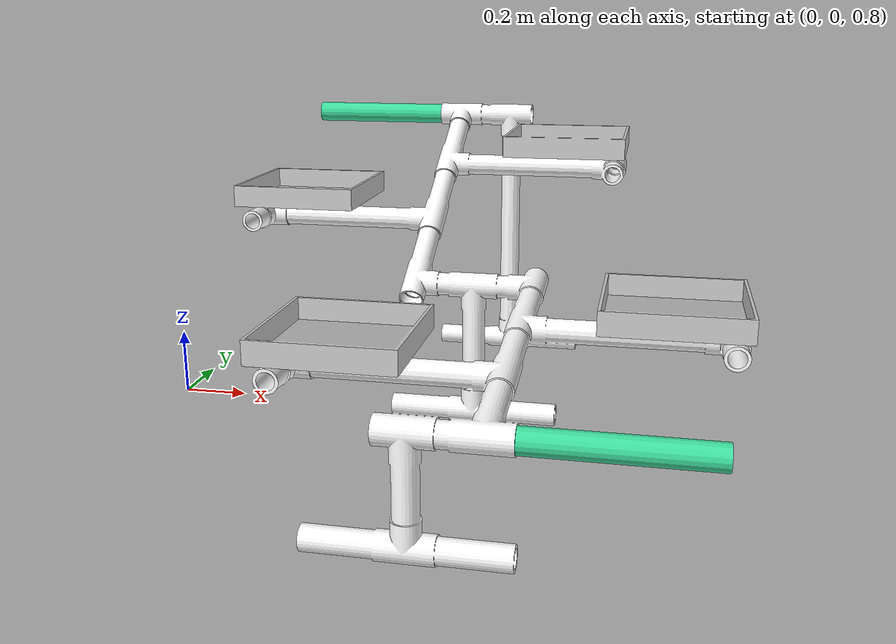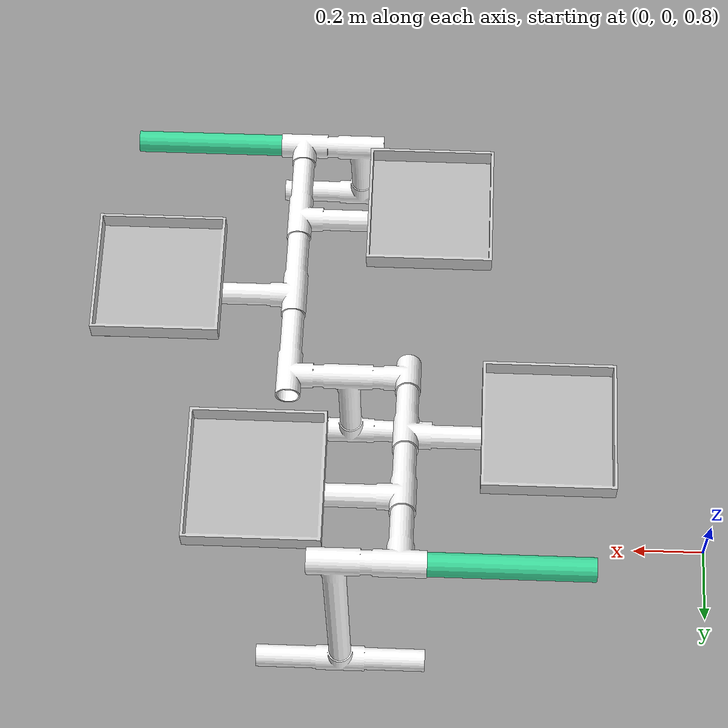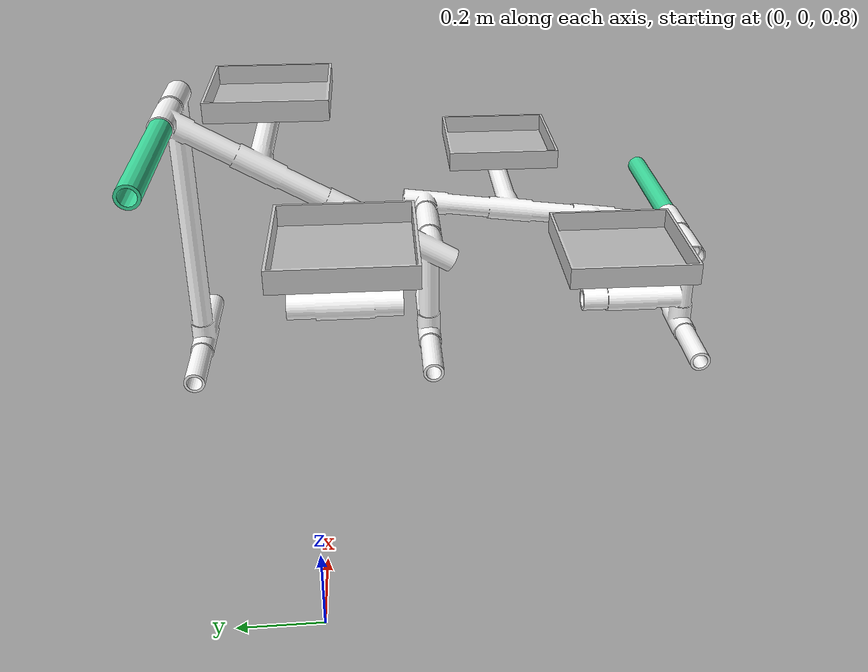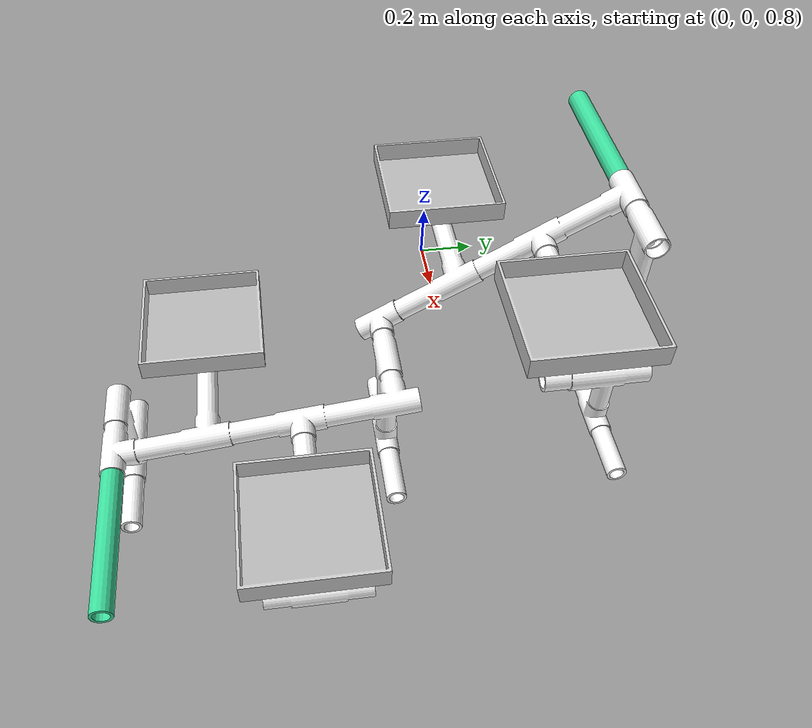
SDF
<?xml version="1.0" ?>
<sdf version='1.9'>
  <model name='rs2026_bin_urdf'>
    <static>true</static>
    <link name='base_link'>
      <inertial>
        <pose>1.0204 1.2699 0.28257 0 0 0</pose>
        <mass>11.751</mass>
        <inertia>
          <ixx>0.057018</ixx>
          <ixy>1.9787e-10</ixy>
          <ixz>-7.0658e-10</ixz>
          <iyy>0.060393</iyy>
          <iyz>0.0014998</iyz>
          <izz>0.096926</izz>
        </inertia>
      </inertial>
      <collision name='base_link_collision'>
        <pose>0 0 0 0 0 0</pose>
        <geometry>
          <mesh>
            <scale>1 1 1</scale>
            <uri>model://rs2026_bin_urdf/meshes/base_link.STL</uri>
          </mesh>
        </geometry>
      </collision>
      <visual name='base_link_visual'>
        <pose>0 0 0 0 0 0</pose>
        <geometry>
          <mesh>
            <scale>1 1 1</scale>
            <uri>model://rs2026_bin_urdf/meshes/base_link.STL</uri>
          </mesh>
        </geometry>
        <material>
          <diffuse>1 1 1 1</diffuse>
          <ambient>1 1 1 1</ambient>
        </material>
      </visual>
    </link>

    <joint name='box_1_joint' type='prismatic'>
      <pose relative_to='base_link'>0.81131 -0.64469 1.2801 1.5708 0 0</pose>
      <parent>base_link</parent>
      <child>box_1</child>
      <axis>
        <xyz>0 0 1</xyz>
        <limit>
          <lower>0</lower>
          <upper>0</upper>
          <effort>0</effort>
          <velocity>0</velocity>
        </limit>
        <dynamics>
          <spring_reference>0</spring_reference>
          <spring_stiffness>0</spring_stiffness>
        </dynamics>
      </axis>
    </joint>
    <link name='box_1'>
      <pose relative_to='box_1_joint'>0 0 0 0 0 0</pose>
      <inertial>
        <pose>1.1102e-16 0.071012 0.175 0 0 0</pose>
        <mass>5.327</mass>
        <inertia>
          <ixx>0.12994</ixx>
          <ixy>-7.0907e-17</ixy>
          <ixz>-1.6488e-17</ixz>
          <iyy>0.16257</iyy>
          <iyz>1.5356e-17</iyz>
          <izz>0.12994</izz>
        </inertia>
      </inertial>
      <collision name='box_1_collision'>
        <pose>0 0 0 0 0 0</pose>
        <geometry>
          <mesh>
            <scale>1 1 1</scale>
            <uri>model://rs2026_bin_urdf/meshes/box_1.STL</uri>
          </mesh>
        </geometry>
      </collision>
      <visual name='box_1_visual'>
        <pose>0 0 0 0 0 0</pose>
        <geometry>
          <mesh>
            <scale>1 1 1</scale>
            <uri>model://rs2026_bin_urdf/meshes/box_1.dae</uri>
          </mesh>
        </geometry>
      </visual>

      <!-- Scoring: markers landing in this bin. -->
      <sensor name='box_1_contact_sensor' type='contact'>
        <update_rate>30.0</update_rate>
        <always_on>true</always_on>
        <contact>
          <collision>box_1_collision</collision>
        </contact>
      </sensor>
    </link>

    <joint name='box_2_joint' type='prismatic'>
      <pose relative_to='base_link'>1.5566 -0.38765 1.3134 1.5708 0 0</pose>
      <parent>base_link</parent>
      <child>box_2</child>
      <axis>
        <xyz>0 0 1</xyz>
        <limit>
          <lower>0</lower>
          <upper>0</upper>
          <effort>0</effort>
          <velocity>0</velocity>
        </limit>
        <dynamics>
          <spring_reference>0</spring_reference>
          <spring_stiffness>0</spring_stiffness>
        </dynamics>
      </axis>
    </joint>
    <link name='box_2'>
      <pose relative_to='box_2_joint'>0 0 0 0 0 0</pose>
      <inertial>
        <pose>0 0.071012 0.175 0 0 0</pose>
        <mass>5.327</mass>
        <inertia>
          <ixx>0.12994</ixx>
          <ixy>-1.3072e-17</ixy>
          <ixz>2.5931e-17</ixz>
          <iyy>0.16257</iyy>
          <iyz>7.8168e-17</iyz>
          <izz>0.12994</izz>
        </inertia>
      </inertial>
      <collision name='box_2_collision'>
        <pose>0 0 0 0 0 0</pose>
        <geometry>
          <mesh>
            <scale>1 1 1</scale>
            <uri>model://rs2026_bin_urdf/meshes/box_2.STL</uri>
          </mesh>
        </geometry>
      </collision>
      <visual name='box_2_visual'>
        <pose>0 0 0 0 0 0</pose>
        <geometry>
          <mesh>
            <scale>1 1 1</scale>
            <uri>model://rs2026_bin_urdf/meshes/box_2.dae</uri>
          </mesh>
        </geometry>
      </visual>

      <!-- Scoring: markers landing in this bin. -->
      <sensor name='box_2_contact_sensor' type='contact'>
        <update_rate>30.0</update_rate>
        <always_on>true</always_on>
        <contact>
          <collision>box_2_collision</collision>
        </contact>
      </sensor>
    </link>

    <joint name='box_3_joint' type='prismatic'>
      <pose relative_to='base_link'>0.48431 0 1.4793 1.5708 0 0</pose>
      <parent>base_link</parent>
      <child>box_3</child>
      <axis>
        <xyz>0 0 1</xyz>
        <limit>
          <lower>0</lower>
          <upper>0</upper>
          <effort>0</effort>
          <velocity>0</velocity>
        </limit>
        <dynamics>
          <spring_reference>0</spring_reference>
          <spring_stiffness>0</spring_stiffness>
        </dynamics>
      </axis>
    </joint>
    <link name='box_3'>
      <pose relative_to='box_3_joint'>0 0 0 0 0 0</pose>
      <inertial>
        <pose>-1.6653e-16 0.071012 0.065224 0 0 0</pose>
        <mass>5.327</mass>
        <inertia>
          <ixx>0.12994</ixx>
          <ixy>6.8046e-17</ixy>
          <ixz>-2.0031e-17</ixz>
          <iyy>0.16257</iyy>
          <iyz>-1.7974e-17</iyz>
          <izz>0.12994</izz>
        </inertia>
      </inertial>
      <collision name='box_3_collision'>
        <pose>0 0 0 0 0 0</pose>
        <geometry>
          <mesh>
            <scale>1 1 1</scale>
            <uri>model://rs2026_bin_urdf/meshes/box_3.STL</uri>
          </mesh>
        </geometry>
      </collision>
      <visual name='box_3_visual'>
        <pose>0 0 -0.109776 0 0 0</pose>
        <geometry>
          <mesh>
            <scale>1 1 1</scale>
            <uri>model://rs2026_bin_urdf/meshes/box_2.dae</uri>
          </mesh>
        </geometry>

      </visual>

      <!-- Scoring: markers landing in this bin. -->
      <sensor name='box_3_contact_sensor' type='contact'>
        <update_rate>30.0</update_rate>
        <always_on>true</always_on>
        <contact>
          <collision>box_3_collision</collision>
        </contact>
      </sensor>
    </link>

    <joint name='box_4_joint' type='prismatic'>
      <pose relative_to='base_link'>1.2296 0 1.612 1.5708 0 0</pose>
      <parent>base_link</parent>
      <child>box_4</child>
      <axis>
        <xyz>0 0 1</xyz>
        <limit>
          <lower>0</lower>
          <upper>0</upper>
          <effort>0</effort>
          <velocity>0</velocity>
        </limit>
        <dynamics>
          <spring_reference>0</spring_reference>
          <spring_stiffness>0</spring_stiffness>
        </dynamics>
      </axis>
    </joint>
    <link name='box_4'>
      <pose relative_to='box_4_joint'>0 0 0 0 0 0</pose>
      <inertial>
        <pose>0 0.071012 -0.15148 0 0 0</pose>
        <mass>5.327</mass>
        <inertia>
          <ixx>0.12994</ixx>
          <ixy>-3.3796e-17</ixy>
          <ixz>8.2973e-17</ixz>
          <iyy>0.16257</iyy>
          <iyz>4.1683e-17</iyz>
          <izz>0.12994</izz>
        </inertia>
      </inertial>
      <collision name='box_4_collision'>
        <pose>0 0 0 0 0 0</pose>
        <geometry>
          <mesh>
            <scale>1 1 1</scale>
            <uri>model://rs2026_bin_urdf/meshes/box_4.STL</uri>
          </mesh>
        </geometry>
      </collision>
      <visual name='box_4_visual'>
        <pose>0 0 -0.326476 0 0 0</pose>
        <geometry>
          <mesh>
            <scale>1 1 1</scale>
            <uri>model://rs2026_bin_urdf/meshes/box_1.dae</uri>
          </mesh>
        </geometry>
      </visual>

      <!-- Scoring: markers landing in this bin. -->
      <sensor name='box_4_contact_sensor' type='contact'>
        <update_rate>30.0</update_rate>
        <always_on>true</always_on>
        <contact>
          <collision>box_4_collision</collision>
        </contact>
      </sensor>
    </link>

    <!-- continuous joint converted to revolute with no effective limits -->
    <joint name='greenbar_1_joint' type='revolute'>
      <pose relative_to='base_link'>1.2157 -1.0792 1.1928 -1.5707926535764 -1.5707926536058 3.1415926535898</pose>
      <parent>base_link</parent>
      <child>greenbar_1</child>
      <axis>
        <xyz>0 1 0</xyz>
        <limit>
          <lower>-1e16</lower>
          <upper>1e16</upper>
        </limit>
        <dynamics>
          <spring_reference>0</spring_reference>
          <spring_stiffness>0</spring_stiffness>
        </dynamics>
      </axis>
    </joint>
    <link name='greenbar_1'>
      <pose relative_to='greenbar_1_joint'>0 0 0 0 0 0</pose>
      <inertial>
        <pose>0 -0.225 0 0 0 0</pose>
        <mass>0.59523</mass>
        <inertia>
          <ixx>0.010255</ixx>
          <ixy>1.3235e-20</ixy>
          <ixz>-1.4334e-36</ixz>
          <iyy>0.00042171</iyy>
          <iyz>6.3473e-35</iyz>
          <izz>0.010255</izz>
        </inertia>
      </inertial>
      <collision name='greenbar_1_collision'>
        <pose>0 0 0 0 0 0</pose>
        <geometry>
          <mesh>
            <scale>1 1 1</scale>
            <uri>model://rs2026_bin_urdf/meshes/greenbar_1.STL</uri>
          </mesh>
        </geometry>
      </collision>
      <visual name='greenbar_1_visual'>
        <pose>0 0 0 0 0 0</pose>
        <geometry>
          <mesh>
            <scale>1 1 1</scale>
            <uri>model://rs2026_bin_urdf/meshes/greenbar_1.STL</uri>
          </mesh>
        </geometry>
        <material>
          <diffuse>0.24 0.87 0.62 1</diffuse>
          <ambient>0.24 0.87 0.62 1</ambient>
        </material>
      </visual>
    </link>

    <!-- greenbar_2 had zero mass in URDF; assigned minimal mass to make SDF valid -->
    <joint name='greenbar_2_joint' type='revolute'>
      <pose relative_to='base_link'>0.37519 0.38798 1.6905 1.5708 1.5708 0</pose>
      <parent>base_link</parent>
      <child>greenbar_2</child>
      <axis>
        <xyz>0 1 0</xyz>
        <limit>
          <lower>-1e16</lower>
          <upper>1e16</upper>
        </limit>
        <dynamics>
          <spring_reference>0</spring_reference>
          <spring_stiffness>0</spring_stiffness>
        </dynamics>
      </axis>
    </joint>
    <link name='greenbar_2'>
      <pose relative_to='greenbar_2_joint'>0 0 0 0 0 0</pose>
      <inertial>
        <pose>0 0 0 0 0 0</pose>
        <mass>0.001</mass>
        <inertia>
          <ixx>1e-6</ixx>
          <ixy>0</ixy>
          <ixz>0</ixz>
          <iyy>1e-6</iyy>
          <iyz>0</iyz>
          <izz>1e-6</izz>
        </inertia>
      </inertial>
      <collision name='greenbar_2_collision'>
        <pose>0 0 0 0 0 0</pose>
        <geometry>
          <mesh>
            <scale>1 1 1</scale>
            <uri>model://rs2026_bin_urdf/meshes/greenbar_2.STL</uri>
          </mesh>
        </geometry>
      </collision>
      <visual name='greenbar_2_visual'>
        <pose>0 0 0 0 0 0</pose>
        <geometry>
          <mesh>
            <scale>1 1 1</scale>
            <uri>model://rs2026_bin_urdf/meshes/greenbar_2.STL</uri>
          </mesh>
        </geometry>
        <material>
          <diffuse>0.24 0.87 0.62 1</diffuse>
          <ambient>0.24 0.87 0.62 1</ambient>
        </material>
      </visual>
    </link>

  </model>
</sdf>
